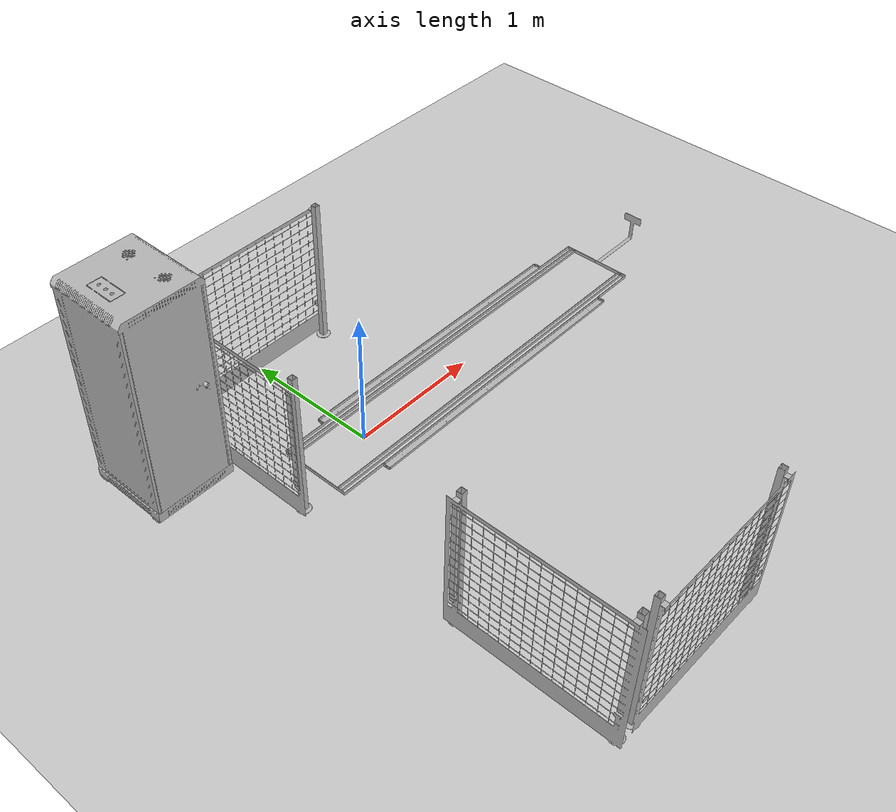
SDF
<sdf version="1.7">
 <world name="default">
  <model name="ground_plane">
   <static>1</static>
   <link name="link">
    <collision name="collision">
     <geometry><plane><normal>0 0 1</normal><size>100 100</size></plane></geometry>
     <surface>
      <contact><collide_bitmask>65535</collide_bitmask></contact>
      <friction><ode><mu>100</mu><mu2>50</mu2></ode></friction>
     </surface>
    </collision>
    <visual name="visual">
     <cast_shadows>0</cast_shadows>
     <geometry><plane><normal>0 0 1</normal><size>100 100</size></plane></geometry>
     <material>
      <script><uri>file://media/materials/scripts/gazebo.material</uri><name>Gazebo/Grey</name></script>
     </material>
    </visual>
   </link>
  </model>
  <model name="ifarlab_ray">
   <link name="link_0">
    <inertial>
     <mass>1</mass>
     <inertia>
      <ixx>0.166667</ixx>
      <ixy>0</ixy>
      <ixz>0</ixz>
      <iyy>0.166667</iyy>
      <iyz>0</iyz>
      <izz>0.166667</izz>
     </inertia>
    </inertial>
    <visual name="visual">
     <pose>0.4 -1.28 0 0 -0 0</pose>
     <geometry>
      <mesh><uri>model://ifarlab_ray/model/ifarlab_ray.stl</uri><scale>0.001 0.001 0.001</scale></mesh>
     </geometry>
    </visual>
    <collision name="collision">
     <pose>0.4 -1.28 0 0 -0 0</pose>
     <geometry>
      <mesh><uri>model://ifarlab_ray/model/ifarlab_ray.stl</uri><scale>0.001 0.001 0.001</scale></mesh>
     </geometry>
     <surface>
      <friction>
       <ode><mu>1</mu><mu2>1</mu2><fdir1>0 0 0</fdir1><slip1>0</slip1><slip2>0</slip2></ode>
       <torsional>
        <coefficient>1</coefficient>
        <patch_radius>0</patch_radius>
        <surface_radius>0</surface_radius>
        <use_patch_radius>1</use_patch_radius>
        <ode><slip>0</slip></ode>
       </torsional>
      </friction>
      <bounce><restitution_coefficient>0</restitution_coefficient><threshold>1e+06</threshold></bounce>
      <contact>
       <collide_without_contact>0</collide_without_contact>
       <collide_without_contact_bitmask>1</collide_without_contact_bitmask>
       <collide_bitmask>1</collide_bitmask>
       <ode>
        <soft_cfm>0</soft_cfm>
        <soft_erp>0.2</soft_erp>
        <kp>1e+13</kp>
        <kd>1</kd>
        <max_vel>0.01</max_vel>
        <min_depth>0</min_depth>
       </ode>
       <bullet>
        <split_impulse>1</split_impulse>
        <split_impulse_penetration_threshold>-0.01</split_impulse_penetration_threshold>
        <soft_cfm>0</soft_cfm>
        <soft_erp>0.2</soft_erp>
        <kp>1e+13</kp>
        <kd>1</kd>
       </bullet>
      </contact>
     </surface>
    </collision>
   </link>
   <static>1</static>
   <pose>1.28 5e-06 -0 0 -0 1.5708</pose>
  </model>
  <model name="light_curtain">
   <link name="link_0">
    <inertial>
     <mass>1</mass>
     <inertia>
      <ixx>0.166667</ixx>
      <ixy>0</ixy>
      <ixz>0</ixz>
      <iyy>0.166667</iyy>
      <iyz>0</iyz>
      <izz>0.166667</izz>
     </inertia>
    </inertial>
    <visual name="visual">
     <pose>-0.92725 1.7723 0 0 -0 0</pose>
     <geometry>
      <mesh><uri>model://light_curtain/model/light_curtain.stl</uri><scale>0.001 0.001 0.001</scale></mesh>
     </geometry>
    </visual>
    <collision name="collision">
     <pose>-0.92725 1.7723 0 0 -0 0</pose>
     <geometry>
      <mesh><uri>model://light_curtain/model/light_curtain.stl</uri><scale>0.001 0.001 0.001</scale></mesh>
     </geometry>
     <surface>
      <friction>
       <ode><mu>1</mu><mu2>1</mu2><fdir1>0 0 0</fdir1><slip1>0</slip1><slip2>0</slip2></ode>
       <torsional>
        <coefficient>1</coefficient>
        <patch_radius>0</patch_radius>
        <surface_radius>0</surface_radius>
        <use_patch_radius>1</use_patch_radius>
        <ode><slip>0</slip></ode>
       </torsional>
      </friction>
      <bounce><restitution_coefficient>0</restitution_coefficient><threshold>1e+06</threshold></bounce>
      <contact>
       <collide_without_contact>0</collide_without_contact>
       <collide_without_contact_bitmask>1</collide_without_contact_bitmask>
       <collide_bitmask>1</collide_bitmask>
       <ode>
        <soft_cfm>0</soft_cfm>
        <soft_erp>0.2</soft_erp>
        <kp>1e+13</kp>
        <kd>1</kd>
        <max_vel>0.01</max_vel>
        <min_depth>0</min_depth>
       </ode>
       <bullet>
        <split_impulse>1</split_impulse>
        <split_impulse_penetration_threshold>-0.01</split_impulse_penetration_threshold>
        <soft_cfm>0</soft_cfm>
        <soft_erp>0.2</soft_erp>
        <kp>1e+13</kp>
        <kd>1</kd>
       </bullet>
      </contact>
     </surface>
    </collision>
    <sensor name="ir" type="ray">
     <pose>-0.605 0 0.22 0 -0 0</pose>
     <ray>
      <scan>
       <horizontal>
        <min_angle>-0.001</min_angle>
        <max_angle>0.001</max_angle>
        <samples>640</samples>
        <resolution>1</resolution>
       </horizontal>
       <vertical><samples>1</samples><min_angle>0</min_angle><max_angle>0</max_angle></vertical>
      </scan>
      <range><min>0.001</min><max>1.213</max></range>
     </ray>
     <plugin name="gazebo_ros_range" filename="libgazebo_ros_range.so">
      <topicName>ir</topicName>
      <frameName>link</frameName>
      <frameId>link</frameId>
      <radiation>infrared</radiation>
     </plugin>
     <always_on>1</always_on>
     <update_rate>10</update_rate>
     <visualize>1</visualize>
    </sensor>
    <sensor name="ir1" type="ray">
     <pose>-0.605 0 0.32 0 -0 0</pose>
     <ray>
      <scan>
       <horizontal>
        <min_angle>-0.001</min_angle>
        <max_angle>0.001</max_angle>
        <samples>640</samples>
        <resolution>1</resolution>
       </horizontal>
       <vertical><samples>1</samples><min_angle>0</min_angle><max_angle>0</max_angle></vertical>
      </scan>
      <range><min>0.001</min><max>1.213</max><resolution>0.001</resolution></range>
     </ray>
     <plugin name="gazebo_ros_range" filename="libgazebo_ros_range.so">
      <topicName>ir1</topicName>
      <frameName>link</frameName>
      <frameId>link</frameId>
      <radiation>infrared</radiation>
     </plugin>
     <always_on>1</always_on>
     <update_rate>10</update_rate>
     <visualize>1</visualize>
    </sensor>
    <sensor name="ir2" type="ray">
     <pose>-0.605 0 0.42 0 -0 0</pose>
     <ray>
      <scan>
       <horizontal>
        <min_angle>-0.001</min_angle>
        <max_angle>0.001</max_angle>
        <samples>640</samples>
        <resolution>1</resolution>
       </horizontal>
       <vertical><samples>1</samples><min_angle>0</min_angle><max_angle>0</max_angle></vertical>
      </scan>
      <range><min>0.001</min><max>1.213</max><resolution>0.001</resolution></range>
     </ray>
     <plugin name="gazebo_ros_range" filename="libgazebo_ros_range.so">
      <topicName>ir2</topicName>
      <frameName>link</frameName>
      <frameId>link</frameId>
      <radiation>infrared</radiation>
     </plugin>
     <always_on>1</always_on>
     <update_rate>10</update_rate>
     <visualize>1</visualize>
    </sensor>
    <sensor name="ir3" type="ray">
     <pose>-0.605 0 0.52 0 -0 0</pose>
     <ray>
      <scan>
       <horizontal>
        <samples>320</samples>
        <resolution>1</resolution>
        <min_angle>-0.001</min_angle>
        <max_angle>0.001</max_angle>
       </horizontal>
       <vertical><samples>1</samples><min_angle>0</min_angle><max_angle>0</max_angle></vertical>
      </scan>
      <range><min>0.001</min><max>1.213</max><resolution>0.001</resolution></range>
     </ray>
     <plugin name="gazebo_ros_range" filename="libgazebo_ros_range.so">
      <topicName>ir3</topicName>
      <frameName>link</frameName>
      <frameId>link</frameId>
      <radiation>infrared</radiation>
     </plugin>
     <always_on>1</always_on>
     <update_rate>10</update_rate>
     <visualize>1</visualize>
    </sensor>
    <sensor name="ir4" type="ray">
     <pose>-0.605 0 0.62 0 -0 0</pose>
     <ray>
      <scan>
       <horizontal>
        <min_angle>-0.001</min_angle>
        <max_angle>0.001</max_angle>
        <samples>640</samples>
        <resolution>1</resolution>
       </horizontal>
       <vertical><samples>1</samples><min_angle>0</min_angle><max_angle>0</max_angle></vertical>
      </scan>
      <range><min>0.001</min><max>1.213</max><resolution>0.001</resolution></range>
     </ray>
     <plugin name="gazebo_ros_range" filename="libgazebo_ros_range.so">
      <topicName>ir4</topicName>
      <frameName>link</frameName>
      <frameId>link</frameId>
      <radiation>infrared</radiation>
     </plugin>
     <always_on>1</always_on>
     <update_rate>10</update_rate>
     <visualize>1</visualize>
    </sensor>
    <sensor name="ir5" type="ray">
     <pose>-0.605 0 0.72 0 -0 0</pose>
     <ray>
      <scan>
       <horizontal>
        <min_angle>-0.001</min_angle>
        <max_angle>0.001</max_angle>
        <samples>640</samples>
        <resolution>1</resolution>
       </horizontal>
       <vertical><samples>1</samples><min_angle>0</min_angle><max_angle>0</max_angle></vertical>
      </scan>
      <range><min>0.001</min><max>1.213</max><resolution>0.001</resolution></range>
     </ray>
     <plugin name="gazebo_ros_range" filename="libgazebo_ros_range.so">
      <topicName>ir5</topicName>
      <frameName>link</frameName>
      <frameId>link</frameId>
      <radiation>infrared</radiation>
     </plugin>
     <always_on>1</always_on>
     <update_rate>10</update_rate>
     <visualize>1</visualize>
    </sensor>
    <sensor name="ir6" type="ray">
     <pose>-0.605 0 0.82 0 -0 0</pose>
     <ray>
      <scan>
       <horizontal>
        <min_angle>-0.001</min_angle>
        <max_angle>0.001</max_angle>
        <samples>640</samples>
        <resolution>1</resolution>
       </horizontal>
       <vertical><samples>1</samples><min_angle>0</min_angle><max_angle>0</max_angle></vertical>
      </scan>
      <range><min>0.001</min><max>1.213</max><resolution>0.001</resolution></range>
     </ray>
     <plugin name="gazebo_ros_range" filename="libgazebo_ros_range.so">
      <topicName>ir6</topicName>
      <frameName>link</frameName>
      <frameId>link</frameId>
      <radiation>infrared</radiation>
     </plugin>
     <always_on>1</always_on>
     <update_rate>10</update_rate>
     <visualize>1</visualize>
    </sensor>
    <sensor name="ir7" type="ray">
     <pose>-0.605 0 0.92 0 -0 0</pose>
     <ray>
      <scan>
       <horizontal>
        <min_angle>-0.001</min_angle>
        <max_angle>0.001</max_angle>
        <samples>640</samples>
        <resolution>1</resolution>
       </horizontal>
       <vertical><samples>1</samples><min_angle>0</min_angle><max_angle>0</max_angle></vertical>
      </scan>
      <range><min>0.001</min><max>1.213</max><resolution>0.001</resolution></range>
     </ray>
     <plugin name="gazebo_ros_range" filename="libgazebo_ros_range.so">
      <topicName>ir7</topicName>
      <frameName>link</frameName>
      <frameId>link</frameId>
      <radiation>infrared</radiation>
     </plugin>
     <always_on>1</always_on>
     <update_rate>10</update_rate>
     <visualize>1</visualize>
    </sensor>
    <sensor name="ir8" type="ray">
     <pose>-0.605 0 1.02 0 -0 0</pose>
     <ray>
      <scan>
       <horizontal>
        <min_angle>-0.001</min_angle>
        <max_angle>0.001</max_angle>
        <samples>640</samples>
        <resolution>1</resolution>
       </horizontal>
       <vertical><samples>1</samples><min_angle>0</min_angle><max_angle>0</max_angle></vertical>
      </scan>
      <range><min>0.001</min><max>1.213</max><resolution>0.001</resolution></range>
     </ray>
     <plugin name="gazebo_ros_range" filename="libgazebo_ros_range.so">
      <topicName>ir8</topicName>
      <frameName>link</frameName>
      <frameId>link</frameId>
      <radiation>infrared</radiation>
     </plugin>
     <always_on>1</always_on>
     <update_rate>10</update_rate>
     <visualize>1</visualize>
    </sensor>
   </link>
   <static>1</static>
   <pose>-0.726743 -0.78522 0 0 0 -1.5708</pose>
  </model>
  <model name="kabinet">
   <link name="link_0">
    <inertial>
     <mass>1</mass>
     <inertia>
      <ixx>0.166667</ixx>
      <ixy>0</ixy>
      <ixz>0</ixz>
      <iyy>0.166667</iyy>
      <iyz>0</iyz>
      <izz>0.166667</izz>
     </inertia>
    </inertial>
    <visual name="visual">
     <pose>0.7 -3.7 0 0 -0 0</pose>
     <geometry>
      <mesh><uri>model://kabinet/model/Kabinet.stl</uri><scale>0.001 0.001 0.00125</scale></mesh>
     </geometry>
    </visual>
    <collision name="collision">
     <pose>0.7 3.7 0 0 -0 0</pose>
     <geometry>
      <mesh><uri>model://kabinet/model/Kabinet.stl</uri><scale>0.001 0.001 0.00125</scale></mesh>
     </geometry>
     <surface>
      <friction>
       <ode><mu>1</mu><mu2>1</mu2><fdir1>0 0 0</fdir1><slip1>0</slip1><slip2>0</slip2></ode>
       <torsional>
        <coefficient>1</coefficient>
        <patch_radius>0</patch_radius>
        <surface_radius>0</surface_radius>
        <use_patch_radius>1</use_patch_radius>
        <ode><slip>0</slip></ode>
       </torsional>
      </friction>
      <bounce><restitution_coefficient>0</restitution_coefficient><threshold>1e+06</threshold></bounce>
      <contact>
       <collide_without_contact>0</collide_without_contact>
       <collide_without_contact_bitmask>1</collide_without_contact_bitmask>
       <collide_bitmask>1</collide_bitmask>
       <ode>
        <soft_cfm>0</soft_cfm>
        <soft_erp>0.2</soft_erp>
        <kp>1e+13</kp>
        <kd>1</kd>
        <max_vel>0.01</max_vel>
        <min_depth>0</min_depth>
       </ode>
       <bullet>
        <split_impulse>1</split_impulse>
        <split_impulse_penetration_threshold>-0.01</split_impulse_penetration_threshold>
        <soft_cfm>0</soft_cfm>
        <soft_erp>0.2</soft_erp>
        <kp>1e+13</kp>
        <kd>1</kd>
       </bullet>
      </contact>
     </surface>
    </collision>
   </link>
   <static>1</static>
   <pose>-1.1 0.742257 0 0 -0 3.14159</pose>
  </model>
  <model name="barrier_2">
   <link name="link_0">
    <inertial>
     <mass>1</mass>
     <inertia>
      <ixx>0.166667</ixx>
      <ixy>0</ixy>
      <ixz>0</ixz>
      <iyy>0.166667</iyy>
      <iyz>0</iyz>
      <izz>0.166667</izz>
     </inertia>
    </inertial>
    <visual name="visual">
     <pose>1.085 0.4 0 0 -0 0</pose>
     <geometry><mesh><uri>model://barrier/model/barrier.stl</uri><scale>0.001 0.001 0.001</scale></mesh></geometry>
    </visual>
    <collision name="collision">
     <pose>1.085 0.4 0 0 -0 0</pose>
     <geometry><mesh><uri>model://barrier/model/barrier.stl</uri><scale>0.001 0.001 0.001</scale></mesh></geometry>
     <surface>
      <friction>
       <ode><mu>1</mu><mu2>1</mu2><fdir1>0 0 0</fdir1><slip1>0</slip1><slip2>0</slip2></ode>
       <torsional>
        <coefficient>1</coefficient>
        <patch_radius>0</patch_radius>
        <surface_radius>0</surface_radius>
        <use_patch_radius>1</use_patch_radius>
        <ode><slip>0</slip></ode>
       </torsional>
      </friction>
      <bounce><restitution_coefficient>0</restitution_coefficient><threshold>1e+06</threshold></bounce>
      <contact>
       <collide_without_contact>0</collide_without_contact>
       <collide_without_contact_bitmask>1</collide_without_contact_bitmask>
       <collide_bitmask>1</collide_bitmask>
       <ode>
        <soft_cfm>0</soft_cfm>
        <soft_erp>0.2</soft_erp>
        <kp>1e+13</kp>
        <kd>1</kd>
        <max_vel>0.01</max_vel>
        <min_depth>0</min_depth>
       </ode>
       <bullet>
        <split_impulse>1</split_impulse>
        <split_impulse_penetration_threshold>-0.01</split_impulse_penetration_threshold>
        <soft_cfm>0</soft_cfm>
        <soft_erp>0.2</soft_erp>
        <kp>1e+13</kp>
        <kd>1</kd>
       </bullet>
      </contact>
     </surface>
    </collision>
   </link>
   <static>1</static>
   <pose>-0.69 0.404037 0 0 0 -1.5708</pose>
  </model>
  <model name="barrier_3_clone_0">
   <link name="link_0">
    <inertial>
     <mass>1</mass>
     <inertia>
      <ixx>0.166667</ixx>
      <ixy>0</ixy>
      <ixz>0</ixz>
      <iyy>0.166667</iyy>
      <iyz>0</iyz>
      <izz>0.166667</izz>
     </inertia>
    </inertial>
    <visual name="visual">
     <pose>1.085 0.4 0 0 -0 0</pose>
     <geometry><mesh><uri>model://barrier/model/barrier.stl</uri><scale>0.001 0.001 0.001</scale></mesh></geometry>
    </visual>
    <collision name="collision">
     <pose>1.085 0.4 0 0 -0 0</pose>
     <geometry><mesh><uri>model://barrier/model/barrier.stl</uri><scale>0.001 0.001 0.001</scale></mesh></geometry>
     <surface>
      <friction>
       <ode><mu>1</mu><mu2>1</mu2><fdir1>0 0 0</fdir1><slip1>0</slip1><slip2>0</slip2></ode>
       <torsional>
        <coefficient>1</coefficient>
        <patch_radius>0</patch_radius>
        <surface_radius>0</surface_radius>
        <use_patch_radius>1</use_patch_radius>
        <ode><slip>0</slip></ode>
       </torsional>
      </friction>
      <bounce><restitution_coefficient>0</restitution_coefficient><threshold>1e+06</threshold></bounce>
      <contact>
       <collide_without_contact>0</collide_without_contact>
       <collide_without_contact_bitmask>1</collide_without_contact_bitmask>
       <collide_bitmask>1</collide_bitmask>
       <ode>
        <soft_cfm>0</soft_cfm>
        <soft_erp>0.2</soft_erp>
        <kp>1e+13</kp>
        <kd>1</kd>
        <max_vel>0.01</max_vel>
        <min_depth>0</min_depth>
       </ode>
       <bullet>
        <split_impulse>1</split_impulse>
        <split_impulse_penetration_threshold>-0.01</split_impulse_penetration_threshold>
        <soft_cfm>0</soft_cfm>
        <soft_erp>0.2</soft_erp>
        <kp>1e+13</kp>
        <kd>1</kd>
       </bullet>
      </contact>
     </surface>
    </collision>
   </link>
   <static>1</static>
   <pose>0 0.947469 0 0 -0 3.14158</pose>
  </model>
  <model name="barrier_4">
   <link name="link_0">
    <inertial>
     <mass>1</mass>
     <inertia>
      <ixx>0.166667</ixx>
      <ixy>0</ixy>
      <ixz>0</ixz>
      <iyy>0.166667</iyy>
      <iyz>0</iyz>
      <izz>0.166667</izz>
     </inertia>
    </inertial>
    <visual name="visual">
     <pose>1.085 0.4 0 0 -0 0</pose>
     <geometry><mesh><uri>model://barrier/model/barrier.stl</uri><scale>0.001 0.001 0.001</scale></mesh></geometry>
    </visual>
    <collision name="collision">
     <pose>1.085 0.4 0 0 -0 0</pose>
     <geometry><mesh><uri>model://barrier/model/barrier.stl</uri><scale>0.001 0.001 0.001</scale></mesh></geometry>
     <surface>
      <friction>
       <ode><mu>1</mu><mu2>1</mu2><fdir1>0 0 0</fdir1><slip1>0</slip1><slip2>0</slip2></ode>
       <torsional>
        <coefficient>1</coefficient>
        <patch_radius>0</patch_radius>
        <surface_radius>0</surface_radius>
        <use_patch_radius>1</use_patch_radius>
        <ode><slip>0</slip></ode>
       </torsional>
      </friction>
      <bounce><restitution_coefficient>0</restitution_coefficient><threshold>1e+06</threshold></bounce>
      <contact>
       <collide_without_contact>0</collide_without_contact>
       <collide_without_contact_bitmask>1</collide_without_contact_bitmask>
       <collide_bitmask>1</collide_bitmask>
       <ode>
        <soft_cfm>0</soft_cfm>
        <soft_erp>0.2</soft_erp>
        <kp>1e+13</kp>
        <kd>1</kd>
        <max_vel>0.01</max_vel>
        <min_depth>0</min_depth>
       </ode>
       <bullet>
        <split_impulse>1</split_impulse>
        <split_impulse_penetration_threshold>-0.01</split_impulse_penetration_threshold>
        <soft_cfm>0</soft_cfm>
        <soft_erp>0.2</soft_erp>
        <kp>1e+13</kp>
        <kd>1</kd>
       </bullet>
      </contact>
     </surface>
    </collision>
   </link>
   <static>1</static>
   <pose>0 -2.54 0 0 -0 0</pose>
  </model>
  <model name="barrier_5">
   <link name="link_0">
    <inertial>
     <mass>1</mass>
     <inertia>
      <ixx>0.166667</ixx>
      <ixy>0</ixy>
      <ixz>0</ixz>
      <iyy>0.166667</iyy>
      <iyz>0</iyz>
      <izz>0.166667</izz>
     </inertia>
    </inertial>
    <visual name="visual">
     <pose>1.085 0.4 0 0 -0 0</pose>
     <geometry><mesh><uri>model://barrier/model/barrier.stl</uri><scale>0.001 0.001 0.001</scale></mesh></geometry>
    </visual>
    <collision name="collision">
     <pose>1.085 0.4 0 0 -0 0</pose>
     <geometry><mesh><uri>model://barrier/model/barrier.stl</uri><scale>0.001 0.001 0.001</scale></mesh></geometry>
     <surface>
      <friction>
       <ode><mu>1</mu><mu2>1</mu2><fdir1>0 0 0</fdir1><slip1>0</slip1><slip2>0</slip2></ode>
       <torsional>
        <coefficient>1</coefficient>
        <patch_radius>0</patch_radius>
        <surface_radius>0</surface_radius>
        <use_patch_radius>1</use_patch_radius>
        <ode><slip>0</slip></ode>
       </torsional>
      </friction>
      <bounce><restitution_coefficient>0</restitution_coefficient><threshold>1e+06</threshold></bounce>
      <contact>
       <collide_without_contact>0</collide_without_contact>
       <collide_without_contact_bitmask>1</collide_without_contact_bitmask>
       <collide_bitmask>1</collide_bitmask>
       <ode>
        <soft_cfm>0</soft_cfm>
        <soft_erp>0.2</soft_erp>
        <kp>1e+13</kp>
        <kd>1</kd>
        <max_vel>0.01</max_vel>
        <min_depth>0</min_depth>
       </ode>
       <bullet>
        <split_impulse>1</split_impulse>
        <split_impulse_penetration_threshold>-0.01</split_impulse_penetration_threshold>
        <soft_cfm>0</soft_cfm>
        <soft_erp>0.2</soft_erp>
        <kp>1e+13</kp>
        <kd>1</kd>
       </bullet>
      </contact>
     </surface>
    </collision>
   </link>
   <static>1</static>
   <pose>-0.69 -1.9807 0 0 0 -1.5708</pose>
  </model>
 </world>
</sdf>
